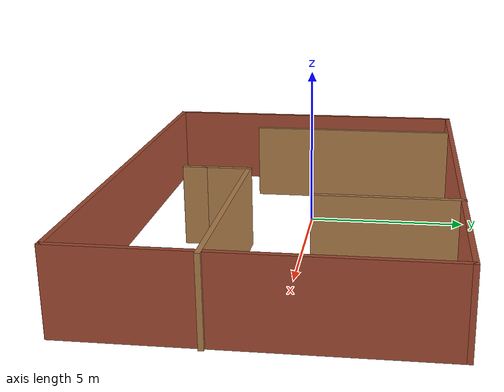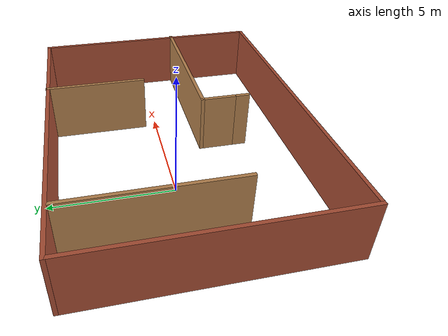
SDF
<?xml version='1.0'?>
<sdf version='1.7'>
  <model name='floorplan1'>
    <pose>2.27734 -0.428519 0 0 -0 0</pose>
    <link name='Wall_0'>
      <collision name='Wall_0_Collision'>
        <geometry>
          <box>
            <size>13.75 0.15 2.5</size>
          </box>
        </geometry>
        <pose>0 0 1.25 0 -0 0</pose>
      </collision>
      <visual name='Wall_0_Visual'>
        <pose>0 0 1.25 0 -0 0</pose>
        <geometry>
          <box>
            <size>13.75 0.15 2.5</size>
          </box>
        </geometry>
        <material>
          <script>
            <uri>file://media/materials/scripts/gazebo.material</uri>
            <name>Gazebo/Bricks</name>
          </script>
          <ambient>1 1 1 1</ambient>
        </material>
        <meta>
          <layer>0</layer>
        </meta>
      </visual>
      <pose>-0.048751 -5.0588 0 0 -0 0</pose>
    </link>
    <link name='Wall_1'>
      <collision name='Wall_1_Collision'>
        <geometry>
          <box>
            <size>10.25 0.15 2.5</size>
          </box>
        </geometry>
        <pose>0 0 1.25 0 -0 0</pose>
      </collision>
      <visual name='Wall_1_Visual'>
        <pose>0 0 1.25 0 -0 0</pose>
        <geometry>
          <box>
            <size>10.25 0.15 2.5</size>
          </box>
        </geometry>
        <material>
          <script>
            <uri>file://media/materials/scripts/gazebo.material</uri>
            <name>Gazebo/Bricks</name>
          </script>
          <ambient>1 1 1 1</ambient>
        </material>
        <meta>
          <layer>0</layer>
        </meta>
      </visual>
      <pose>6.75125 -0.008804 0 0 -0 1.5708</pose>
    </link>
    <link name='Wall_10'>
      <collision name='Wall_10_Collision'>
        <geometry>
          <box>
            <size>1.5 0.15 2.5</size>
          </box>
        </geometry>
        <pose>0 0 1.25 0 -0 0</pose>
      </collision>
      <visual name='Wall_10_Visual'>
        <pose>0 0 1.25 0 -0 0</pose>
        <geometry>
          <box>
            <size>1.5 0.15 2.5</size>
          </box>
        </geometry>
        <material>
          <script>
            <uri>file://media/materials/scripts/gazebo.material</uri>
            <name>Gazebo/Wood</name>
          </script>
          <ambient>1 1 1 1</ambient>
        </material>
        <meta>
          <layer>0</layer>
        </meta>
      </visual>
      <pose>0.248752 -1.91358 0 0 -0 -1.5708</pose>
    </link>
    <link name='Wall_11'>
      <collision name='Wall_11_Collision'>
        <geometry>
          <box>
            <size>0.75 0.15 2.5</size>
          </box>
        </geometry>
        <pose>0 0 1.25 0 -0 0</pose>
      </collision>
      <visual name='Wall_11_Visual'>
        <pose>0 0 1.25 0 -0 0</pose>
        <geometry>
          <box>
            <size>0.75 0.15 2.5</size>
          </box>
        </geometry>
        <material>
          <script>
            <uri>file://media/materials/scripts/gazebo.material</uri>
            <name>Gazebo/Wood</name>
          </script>
          <ambient>1 1 1 1</ambient>
        </material>
        <meta>
          <layer>0</layer>
        </meta>
      </visual>
      <pose>0.248752 -2.88857 0 0 -0 -1.5708</pose>
    </link>
    <link name='Wall_13'>
      <collision name='Wall_13_Collision'>
        <geometry>
          <box>
            <size>4.25 0.15 2.5</size>
          </box>
        </geometry>
        <pose>0 0 1.25 0 -0 0</pose>
      </collision>
      <visual name='Wall_13_Visual'>
        <pose>0 0 1.25 0 -0 0</pose>
        <geometry>
          <box>
            <size>4.25 0.15 2.5</size>
          </box>
        </geometry>
        <material>
          <script>
            <uri>file://media/materials/scripts/gazebo.material</uri>
            <name>Gazebo/Wood</name>
          </script>
          <ambient>1 1 1 1</ambient>
        </material>
        <meta>
          <layer>0</layer>
        </meta>
      </visual>
      <pose>2.46181 3.0088 0 0 -0 -1.5708</pose>
    </link>
    <link name='Wall_2'>
      <collision name='Wall_2_Collision'>
        <geometry>
          <box>
            <size>13.75 0.15 2.5</size>
          </box>
        </geometry>
        <pose>0 0 1.25 0 -0 0</pose>
      </collision>
      <visual name='Wall_2_Visual'>
        <pose>0 0 1.25 0 -0 0</pose>
        <geometry>
          <box>
            <size>13.75 0.15 2.5</size>
          </box>
        </geometry>
        <material>
          <script>
            <uri>file://media/materials/scripts/gazebo.material</uri>
            <name>Gazebo/Bricks</name>
          </script>
          <ambient>1 1 1 1</ambient>
        </material>
        <meta>
          <layer>0</layer>
        </meta>
      </visual>
      <pose>-0.048751 5.0412 0 0 -0 3.14159</pose>
    </link>
    <link name='Wall_5'>
      <collision name='Wall_5_Collision'>
        <geometry>
          <box>
            <size>10.25 0.15 2.5</size>
          </box>
        </geometry>
        <pose>0 0 1.25 0 -0 0</pose>
      </collision>
      <visual name='Wall_5_Visual'>
        <pose>0 0 1.25 0 -0 0</pose>
        <geometry>
          <box>
            <size>10.25 0.15 2.5</size>
          </box>
        </geometry>
        <material>
          <script>
            <uri>file://media/materials/scripts/gazebo.material</uri>
            <name>Gazebo/Bricks</name>
          </script>
          <ambient>1 1 1 1</ambient>
        </material>
        <meta>
          <layer>0</layer>
        </meta>
      </visual>
      <pose>-6.84875 -0.008804 0 0 -0 -1.5708</pose>
    </link>
    <link name='Wall_7'>
      <collision name='Wall_7_Collision'>
        <geometry>
          <box>
            <size>6.75 0.15 2.5</size>
          </box>
        </geometry>
        <pose>0 0 1.25 0 -0 0</pose>
      </collision>
      <visual name='Wall_7_Visual'>
        <pose>0 0 1.25 0 -0 0</pose>
        <geometry>
          <box>
            <size>6.75 0.15 2.5</size>
          </box>
        </geometry>
        <material>
          <script>
            <uri>file://media/materials/scripts/gazebo.material</uri>
            <name>Gazebo/Wood</name>
          </script>
          <ambient>1 1 1 1</ambient>
        </material>
        <meta>
          <layer>0</layer>
        </meta>
      </visual>
      <pose>-4.75541 1.61729 0 0 -0 -1.5708</pose>
    </link>
    <link name='Wall_9'>
      <collision name='Wall_9_Collision'>
        <geometry>
          <box>
            <size>6.75 0.15 2.5</size>
          </box>
        </geometry>
        <pose>0 0 1.25 0 -0 0</pose>
      </collision>
      <visual name='Wall_9_Visual'>
        <pose>0 0 1.25 0 -0 0</pose>
        <geometry>
          <box>
            <size>6.75 0.15 2.5</size>
          </box>
        </geometry>
        <material>
          <script>
            <uri>file://media/materials/scripts/gazebo.material</uri>
            <name>Gazebo/Wood</name>
          </script>
          <ambient>1 1 1 1</ambient>
        </material>
        <meta>
          <layer>0</layer>
        </meta>
      </visual>
      <pose>3.54875 -1.23857 0 0 -0 3.14159</pose>
    </link>
    <static>1</static>
  </model>
</sdf>
